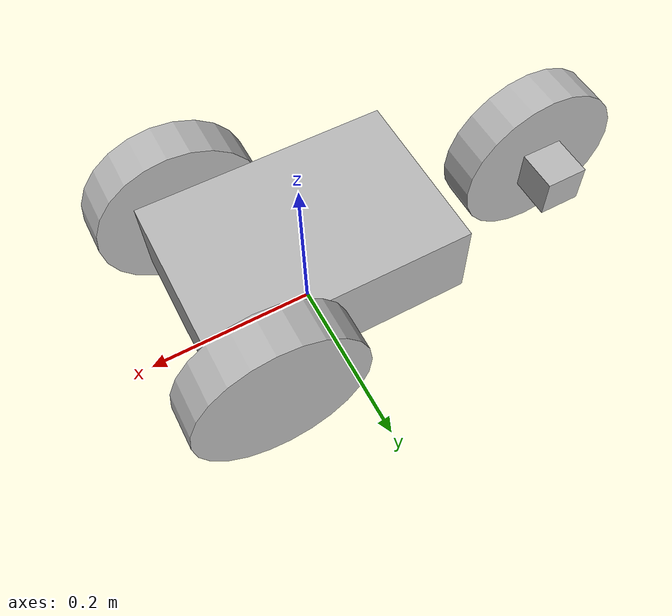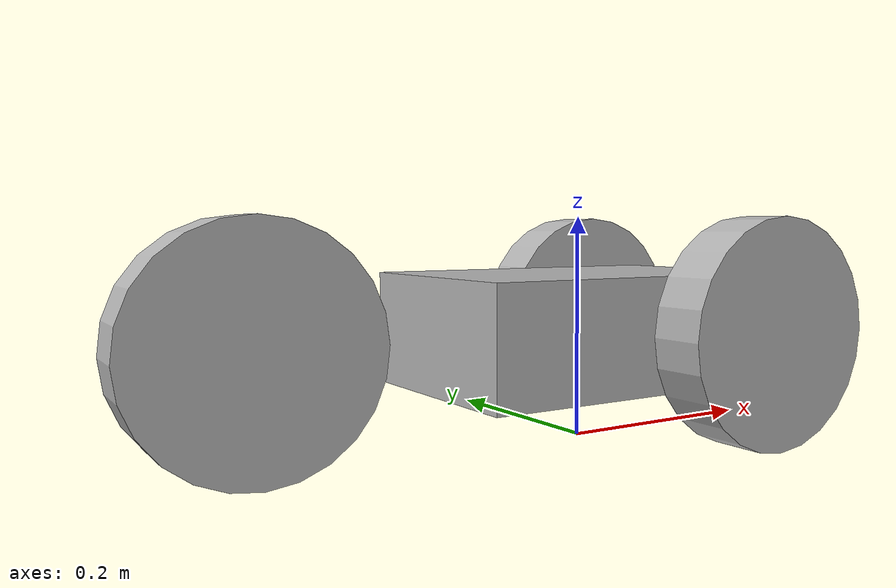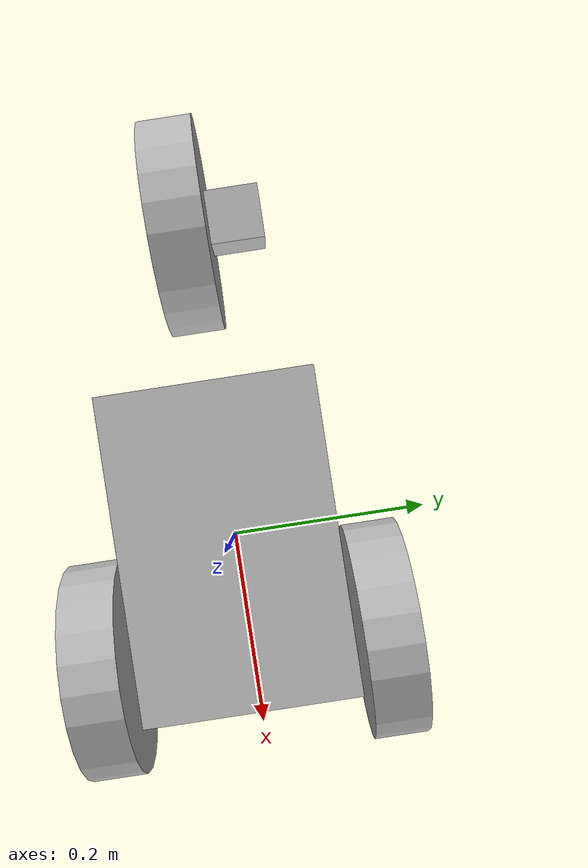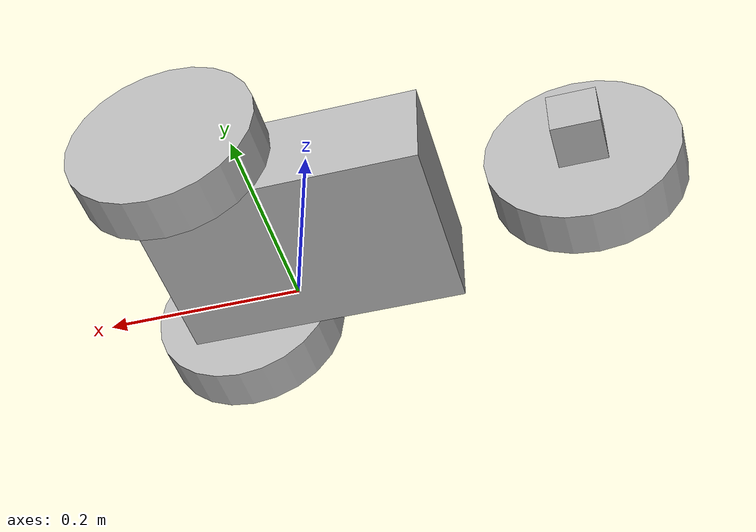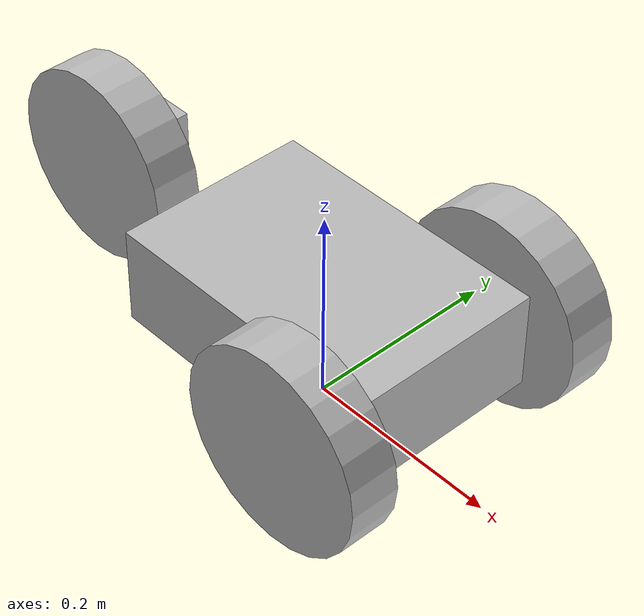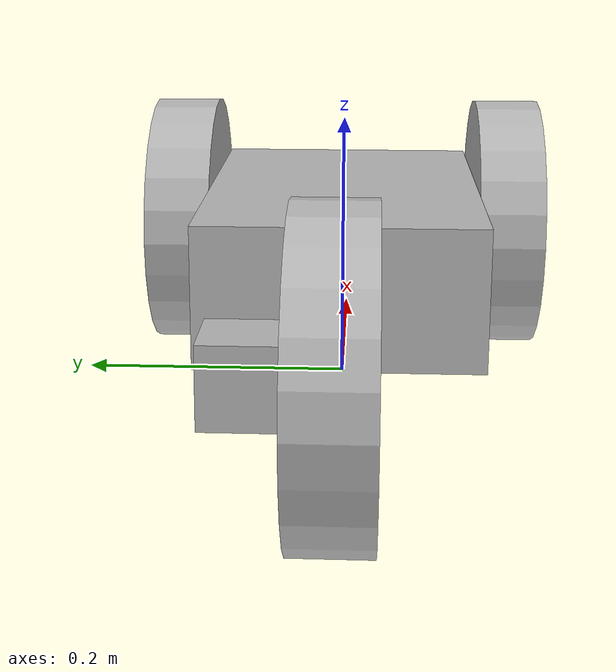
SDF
<?xml version='1.0'?>
<sdf version='1.4'>
  <model name="my_robot">
  <static>false</static>
  <link name='chassis'>
            <pose>0 0 .1 0 0 0</pose>

            <collision name='collision'>
              <geometry>
                <box>
                  <size>.3 .2 .1</size>
                </box>
              </geometry>
            </collision>

            <visual name='visual'>
              <geometry>
                <box>
                  <size>.3 .2 .1</size>
                </box>
              </geometry>
            </visual>
          </link>

<link name="front_wheel">
        <pose>-0.3 0 0.1 0 1.5707 1.5707</pose>
        <collision name="collision">
          <geometry>
            <cylinder>
              <radius>.1</radius>
              <length>.05</length>
            </cylinder>
          </geometry>
        </collision>
        <visual name="visual">
          <geometry>
            <cylinder>
              <radius>.1</radius>
              <length>.05</length>
            </cylinder>
          </geometry>
        </visual>
      </link>

 <link name='front_wheel_hinge'>
            <pose>-0.3 .05 .1 0 0 0</pose>

            <collision name='collision'>
              <geometry>
                <box>
                  <size>.05 .05 .05</size>
                </box>
              </geometry>
            </collision>

            <visual name='visual'>
              <geometry>
                <box>
                  <size>.05 .05 .05</size>
                </box>
              </geometry>
            </visual>
          </link>

 	<link name="left_wheel">
        <pose>.1 .13 .1 0 1.5707 1.5707</pose>
        <collision name="collision">
          <geometry>
            <cylinder>
              <radius>.1</radius>
              <length>.05</length>
            </cylinder>
          </geometry>
        </collision>
        <visual name="visual">
          <geometry>
            <cylinder>
              <radius>.1</radius>
              <length>.05</length>
            </cylinder>
          </geometry>
        </visual>
      </link>

      <link name="right_wheel">
        <pose>.1 -.13 .1 0 1.5707 1.5707</pose>
        <collision name="collision">
          <geometry>
            <cylinder>
              <radius>.1</radius>
              <length>.05</length>
            </cylinder>
          </geometry>
        </collision>
        <visual name="visual">
          <geometry>
            <cylinder>
              <radius>.1</radius>
              <length>.05</length>
            </cylinder>
          </geometry>
        </visual>
      </link>

<joint type="revolute" name="left_wheel_hinge">
        <pose>0 0 -0.03 0 0 0</pose>
        <child>left_wheel</child>
        <parent>chassis</parent>
        <axis>
          <xyz>0 1 0</xyz>
        </axis>
      </joint>

      <joint type="revolute" name="right_wheel_hinge">
        <pose>0 0 0.03 0 0 0</pose>
        <child>right_wheel</child>
        <parent>chassis</parent>
        <axis>
          <xyz>0 1 0</xyz>
        </axis>
      </joint>

<joint name="propulsion_joint" type="revolute">
       <pose>0 0 0.1 0 0 0</pose>
       <parent>front_wheel_hinge</parent>
       <child>front_wheel</child>
       <axis>
       <xyz>0 -1 0</xyz>
       </axis>
       <limit>
            <velocity>1000</velocity>
        </limit>
</joint>

<joint name="steering_joint" type="revolute">
	<pose>0 -0.05 0.1 0 0 0</pose>
       <parent>chassis</parent>
       <child>front_wheel_hinge</child>
       <axis>
       <xyz>0 0 -1</xyz>
       </axis>
       <limit>
            <lower>-.8</lower>
            <upper>.8</upper>
            <velocity>1000</velocity>
       </limit>
</joint>

  </model>
</sdf>
